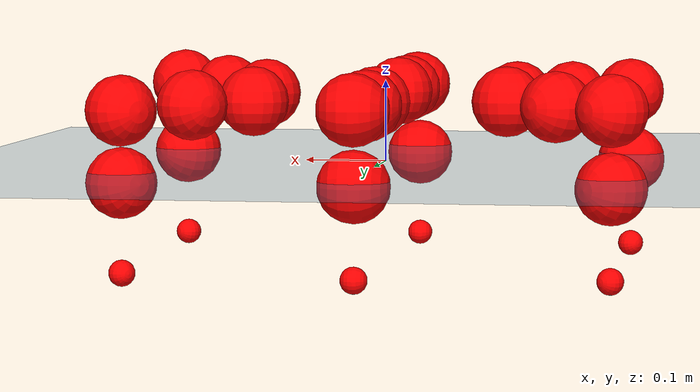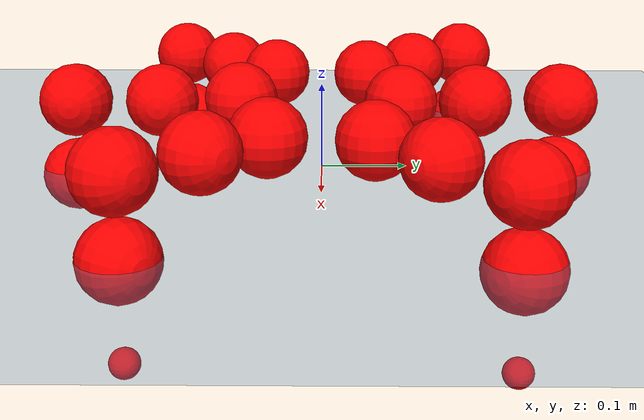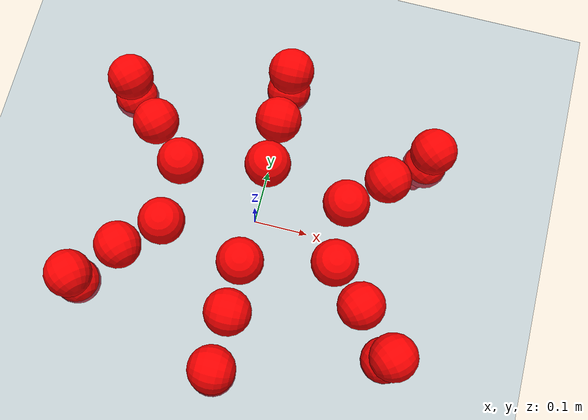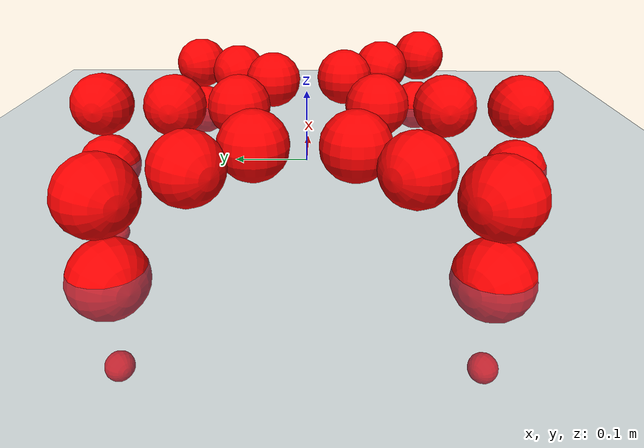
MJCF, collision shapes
<mujoco model="Golem">
  <compiler angle="radian" assetdir="assets" balanceinertia="true" inertiafromgeom="false"/>

  <option timestep="0.005" density="1.2" viscosity="2e-05"/>

  <size nkey="1"/>

  <visual>
    <quality shadowsize="8192"/>
    <map shadowclip="0.5"/>
  </visual>

  <default>
    <default class="/">
      <joint armature="0.01" damping="0.01" frictionloss="0.01"/>
      <geom contype="0" conaffinity="0" group="1" solref="-1000 -80"/>
      <site size="0.01 0.005 0.005" group="5"/>
      <general forcelimited="true" biastype="affine" gainprm="25" biasprm="0 -25 -0.5"/>
      <default class="visual">
        <geom type="mesh" group="2"/>
      </default>
      <default class="collision">
        <geom group="3"/>
      </default>
      <default class="foot">
        <geom size="0.01 0 0" condim="6" group="4" priority="1" solimp="0.015 1 0.01"/>
      </default>
      <default class="reward_collision_sphere">
        <geom group="5" rgba="1 0 0 1"/>
      </default>
    </default>
  </default>

  <asset>
    <texture type="skybox" colorspace="auto" name="//unnamed_texture_0" builtin="gradient" rgb1="0.95 0.95 0.95" rgb2="0.95 0.95 0.95" width="100" height="600"/>
    <texture type="2d" colorspace="auto" name="texplane" builtin="checker" rgb1="0.345 0.575 0.748" rgb2="0.345 0.575 0.748" markrgb="1 1 1" width="512" height="512"/>
    <material name="MatPlane" class="/" texture="texplane" texuniform="true" texrepeat="2 2" specular="0.9"/>
    <mesh name="body" class="/" file="body.stl" scale="0.001 0.001 0.001"/>
    <mesh name="coxa" class="/" file="coxa.stl" scale="0.001 0.001 0.001"/>
    <mesh name="femur" class="/" file="femur.stl" scale="0.001 0.001 0.001"/>
    <mesh name="tibia" class="/" file="tibia.stl" scale="0.001 0.001 0.001"/>
    <mesh name="tarsus" class="/" file="tarsus.stl" scale="0.001 0.001 0.001"/>
  </asset>

  <worldbody>
    <geom name="floor" class="/" size="100 100 0.125" type="plane" group="0" material="MatPlane"/>
    <light name="toplight_shadow" class="/" pos="0 0 5" dir="0.0990148 0.0990148 -0.990148" type="directional" ambient="0.04 0.04 0.04" diffuse="0.55 0.55 0.55" specular="0.12 0.12 0.12"/>
    <light name="toplight_fill" class="/" pos="0 0 5" dir="0.0990148 0.0990148 -0.990148" type="directional" castshadow="false" ambient="0.04 0.04 0.04" diffuse="0.3 0.3 0.3" specular="0.08 0.08 0.08"/>
    <body name="trunk" pos="-0.000191464 -0.00182274 -0.00138553" quat="1 2.148e-05 -1.71212e-05 3.89238e-06">
      <inertial pos="0.00298831 -0.00288954 -0.000982459" quat="0.99991 0.000633881 -0.0134253 0.000432767" mass="4.47882" diaginertia="0.00976084 0.00706707 0.0326198"/>
      <joint name="//unnamed_joint_0" type="free"/>
      <geom name="//unnamed_geom_1" class="/" pos="0 0 0.0810933" quat="1 0 0 0" type="mesh" rgba="0.9 0.9 0.9 1" mesh="body"/>
      <site name="imu" class="/" pos="0.117988 -0.00112826 0.113782" size="0.0107229"/>
      <camera name="track" class="/" pos="0 -1.88778 0" quat="0.707107 0.707107 0 0" mode="trackcom"/>
      <camera name="ego_camera" class="/" pos="0.130768 0 0.126708" quat="-0.5 -0.5 0.5 0.5"/>
      <body name="coxa_RR" pos="-0.179413 -0.0791904 0.0805452" quat="0.381975 0.00122374 0.00018162 -0.924172">
        <inertial pos="0.000515755 0.00265956 -0.00177806" quat="0.99992 0.0116929 0.00119258 0.00462443" mass="0.236795" diaginertia="0.00963821 0.00715183 0.0302916"/>
        <joint name="coxa_joint_RR" class="/" pos="0 0 0" axis="-0.00619333 0.00632166 -0.999961" stiffness="0.00924127" range="-3.08779 3.08515" armature="0.011766" damping="0" frictionloss="0.0121526"/>
        <geom name="//unnamed_geom_2" class="/" type="mesh" rgba="0.2 0.2 0.2 1" mesh="coxa"/>
        <geom name="//unnamed_geom_3" class="reward_collision_sphere" size="0.0428917" pos="-0.0301773 0 0"/>
        <body name="femur_RR" pos="0.0583466 -0.00195031 -0.00217056" quat="0.50028 -0.499731 0.500559 0.499429">
          <inertial pos="-0.000355083 -0.00231335 0.00205255" quat="0.999972 0.00220861 -0.000360199 0.00718527" mass="0.249792" diaginertia="0.0106276 0.00733639 0.0327884"/>
          <joint name="femur_joint_RR" class="/" pos="0 0 0" axis="-0.000191495 -0.00539475 -0.999985" range="-3.08608 3.08532" armature="0.0105511" damping="0.0206965" frictionloss="0.0107022"/>
          <geom name="//unnamed_geom_4" class="/" type="mesh" rgba="0.9 0.9 0.9 1" mesh="femur"/>
          <geom name="//unnamed_geom_5" class="reward_collision_sphere" size="0.0428917"/>
          <body name="tibia_RR" pos="-0.000851535 -0.0998969 0.00171977" quat="-9.7945e-05 1 -7.07622e-05 -2.28676e-05">
            <inertial pos="0.00107469 -0.00157994 0.00194048" quat="1 -0.000204419 0.000247734 -0.000530349" mass="0.245885" diaginertia="0.010224 0.00749768 0.0321266"/>
            <joint name="tibia_joint_RR" class="/" pos="0 0 0" axis="-0.00550433 0.00137287 0.999984" stiffness="0.0044903" range="-3.17168 3.18139" armature="0.00959005" damping="0.0200055" frictionloss="0.00904265"/>
            <geom name="//unnamed_geom_6" class="/" type="mesh" rgba="0.2 0.2 0.2 1" mesh="tibia"/>
            <geom name="//unnamed_geom_7" class="reward_collision_sphere" size="0.0428917"/>
            <body name="tarsus_RR" pos="0.0879536 0.000389198 0.00205607" quat="0.999999 -0.000402634 0.000563595 0.000772189">
              <inertial pos="0.0631686 -0.0015967 0.000987167" quat="0.492386 0.507318 0.497018 0.503147" mass="0.24839" diaginertia="0.0106547 0.00732522 0.0317434"/>
              <joint name="tarsus_joint_RR" class="/" pos="0 0 0" axis="-0.00688008 0.00219162 0.999974" range="-3.17929 3.12766" armature="0.00931686" damping="0.00824095" frictionloss="0.0114317"/>
              <geom name="//unnamed_geom_8" class="/" type="mesh" rgba="0.9 0.9 0.9 1" mesh="tarsus"/>
              <geom name="foot_1" class="foot" size="0.0108687" pos="0.112662 0 0" quat="0 -0.707107 0 0.707107"/>
              <geom name="//unnamed_geom_10" class="reward_collision_sphere" size="0.0428917"/>
              <geom name="//unnamed_geom_11" class="reward_collision_sphere" size="0.0160844" pos="0.108135 0 0"/>
              <site name="foot_1" class="foot" pos="0.112662 0 0" quat="0 -0.707107 0 0.707107" size="0.0107229"/>
            </body>
          </body>
        </body>
      </body>
      <body name="coxa_RM" pos="-0.00285664 -0.123652 0.0830245" quat="0.707416 0.000727455 0.000731046 -0.706797">
        <inertial pos="0.000715824 0.000294893 0.000379751" quat="0.999919 -0.00874292 0.00722661 -0.00574994" mass="0.231614" diaginertia="0.00995388 0.00708536 0.0317453"/>
        <joint name="coxa_joint_RM" class="/" pos="0 0 0" axis="-0.000387485 0.0110943 -0.999938" range="-3.14373 3.09621" armature="0.00934368" damping="0.0268787" frictionloss="0.0114217"/>
        <geom name="//unnamed_geom_12" class="/" type="mesh" rgba="0.2 0.2 0.2 1" mesh="coxa"/>
        <geom name="//unnamed_geom_13" class="reward_collision_sphere" size="0.0428917" pos="-0.0301773 0 0"/>
        <body name="femur_RM" pos="0.0624736 0.00195038 -0.00123514" quat="0.499671 -0.500066 0.499836 0.500427">
          <inertial pos="-0.000571448 0.000803838 -0.00106379" quat="0.99996 -0.00690596 -0.00116394 -0.00560084" mass="0.251737" diaginertia="0.0103064 0.00752032 0.0315728"/>
          <joint name="femur_joint_RM" class="/" pos="0 0 0" axis="8.18479e-05 -0.00244338 -0.999997" stiffness="0.00587199" range="-3.13959 3.18429" armature="0.0111785" damping="0.0173551" frictionloss="0.0102369"/>
          <geom name="//unnamed_geom_14" class="/" type="mesh" rgba="0.9 0.9 0.9 1" mesh="femur"/>
          <geom name="//unnamed_geom_15" class="reward_collision_sphere" size="0.0428917"/>
          <body name="tibia_RM" pos="-0.000265088 -0.101886 -0.0010752" quat="-0.000281477 1 -0.00052763 -0.000102473">
            <inertial pos="0.000347553 0.000213669 0.00042091" quat="0.999942 0.00494945 -0.00511347 -0.0080375" mass="0.242284" diaginertia="0.0103879 0.00756907 0.0317857"/>
            <joint name="tibia_joint_RM" class="/" pos="0 0 0" axis="0.00696681 0.00319638 0.999971" range="-3.08855 3.16102" armature="0.0116631" damping="0.0185649" frictionloss="0.00992913"/>
            <geom name="//unnamed_geom_16" class="/" type="mesh" rgba="0.2 0.2 0.2 1" mesh="tibia"/>
            <geom name="//unnamed_geom_17" class="reward_collision_sphere" size="0.0428917"/>
            <body name="tarsus_RM" pos="0.0918338 0.0023373 0.00266749" quat="1 0.00031249 -0.00027906 -0.00022161">
              <inertial pos="0.0596045 -0.0021164 -0.000515323" quat="0.5012 0.496706 0.499567 0.502508" mass="0.243699" diaginertia="0.0101192 0.00734417 0.0321253"/>
              <joint name="tarsus_joint_RM" class="/" pos="0 0 0" axis="0.00933451 0.00879026 0.999918" range="-3.08608 3.09426" armature="0.00943587" damping="0" frictionloss="0.0120098"/>
              <geom name="//unnamed_geom_18" class="/" type="mesh" rgba="0.9 0.9 0.9 1" mesh="tarsus"/>
              <geom name="foot_2" class="foot" size="0.0100728" pos="0.112662 0 0" quat="0 -0.707107 0 0.707107"/>
              <geom name="//unnamed_geom_20" class="reward_collision_sphere" size="0.0428917"/>
              <geom name="//unnamed_geom_21" class="reward_collision_sphere" size="0.0160844" pos="0.108135 0 0"/>
              <site name="foot_2" class="foot" pos="0.112662 0 0" quat="0 -0.707107 0 0.707107" size="0.0107229"/>
            </body>
          </body>
        </body>
      </body>
      <body name="coxa_RF" pos="0.181883 -0.0755052 0.0816343" quat="0.924074 7.21822e-05 0.000204447 -0.382212">
        <inertial pos="0.00173133 0.000540005 -0.000379353" quat="0.99997 -0.00444501 -0.00603158 -0.00203936" mass="0.242962" diaginertia="0.00994138 0.00729205 0.030644"/>
        <joint name="coxa_joint_RF" class="/" pos="0 0 0" axis="-0.0101438 -0.00879253 -0.99991" stiffness="0.00391009" range="-3.13015 3.10901" armature="0.00979404" damping="0" frictionloss="0.0101626"/>
        <geom name="//unnamed_geom_22" class="/" type="mesh" rgba="0.2 0.2 0.2 1" mesh="coxa"/>
        <geom name="//unnamed_geom_23" class="reward_collision_sphere" size="0.0428917" pos="-0.0301773 0 0"/>
        <body name="femur_RF" pos="0.0581889 -0.000763424 0.00183184" quat="0.499998 -0.499993 0.500016 0.499993">
          <inertial pos="0.00163083 -0.000963104 -0.00239942" quat="0.999948 0.00119033 0.00923164 0.00415521" mass="0.243743" diaginertia="0.00998962 0.00723838 0.0320624"/>
          <joint name="femur_joint_RF" class="/" pos="0 0 0" axis="3.42715e-06 -0.0141031 -0.999901" range="-3.0913 3.13532" armature="0.010875" damping="0.0104583" frictionloss="0.0113631"/>
          <geom name="//unnamed_geom_24" class="/" type="mesh" rgba="0.9 0.9 0.9 1" mesh="femur"/>
          <geom name="//unnamed_geom_25" class="reward_collision_sphere" size="0.0428917"/>
          <body name="tibia_RF" pos="-0.00360953 -0.10334 -0.000355196" quat="-0.00102807 0.999999 0.000132561 0.000818977">
            <inertial pos="0.000590276 0.00125815 -0.000137251" quat="0.99999 -0.0031982 0.00161683 -0.00282999" mass="0.263881" diaginertia="0.0103278 0.00755534 0.0329411"/>
            <joint name="tibia_joint_RF" class="/" pos="0 0 0" axis="0.00474128 0.00281053 0.999985" stiffness="0.0255879" range="-3.18532 3.13321" armature="0.0105402" damping="0.0377725" frictionloss="0.00979229"/>
            <geom name="//unnamed_geom_26" class="/" type="mesh" rgba="0.2 0.2 0.2 1" mesh="tibia"/>
            <geom name="//unnamed_geom_27" class="reward_collision_sphere" size="0.0428917"/>
            <body name="tarsus_RF" pos="0.0899832 -0.00288159 0.00222469" quat="1 1.89154e-05 -4.61914e-06 -1.28655e-05">
              <inertial pos="0.0635474 0.00196954 -0.00102347" quat="0.49955 0.510903 0.493196 0.496171" mass="0.239225" diaginertia="0.00969076 0.00728772 0.0323434"/>
              <joint name="tarsus_joint_RF" class="/" pos="0 0 0" axis="-7.9917e-05 -0.0126616 0.99992" stiffness="0.00859793" range="-3.17115 3.09225" armature="0.0094465" damping="0.00889521" frictionloss="0.0117535"/>
              <geom name="//unnamed_geom_28" class="/" type="mesh" rgba="0.9 0.9 0.9 1" mesh="tarsus"/>
              <geom name="foot_3" class="foot" size="0.0115997" pos="0.112662 0 0" quat="0 -0.707107 0 0.707107"/>
              <geom name="//unnamed_geom_30" class="reward_collision_sphere" size="0.0428917"/>
              <geom name="//unnamed_geom_31" class="reward_collision_sphere" size="0.0160844" pos="0.108135 0 0"/>
              <site name="foot_3" class="foot" pos="0.112662 0 0" quat="0 -0.707107 0 0.707107" size="0.0107229"/>
            </body>
          </body>
        </body>
      </body>
      <body name="coxa_LR" pos="-0.177823 0.0811798 0.079969" quat="0.38285 -8.53869e-05 -0.000107327 0.92381">
        <inertial pos="-0.0021357 -0.000147004 0.00056319" quat="0.99994 0.00134141 -0.00585942 0.00917114" mass="0.252903" diaginertia="0.0102101 0.0075701 0.033502"/>
        <joint name="coxa_joint_LR" class="/" pos="0 0 0" axis="0.00274923 -0.00172758 -0.999995" stiffness="0.00514941" range="-3.18822 3.11608" armature="0.0111066" damping="0.0109319" frictionloss="0.0111745"/>
        <geom name="//unnamed_geom_32" class="/" type="mesh" rgba="0.2 0.2 0.2 1" mesh="coxa"/>
        <geom name="//unnamed_geom_33" class="reward_collision_sphere" size="0.0428917" pos="-0.0301773 0 0"/>
        <body name="femur_LR" pos="0.0610011 0.0010086 -0.00201464" quat="0.499897 -0.500184 0.500828 0.49909">
          <inertial pos="0.000893113 0.000816037 0.00257766" quat="0.999958 0.00527955 0.00498202 0.00553834" mass="0.23181" diaginertia="0.0100494 0.00701925 0.0311212"/>
          <joint name="femur_joint_LR" class="/" pos="0 0 0" axis="-0.00811101 0.0153317 0.99985" stiffness="0.000969928" range="-3.18645 3.19169" armature="0.00920066" damping="0.0149115" frictionloss="0.0102849"/>
          <geom name="//unnamed_geom_34" class="/" type="mesh" rgba="0.9 0.9 0.9 1" mesh="femur"/>
          <geom name="//unnamed_geom_35" class="reward_collision_sphere" size="0.0428917"/>
          <body name="tibia_LR" pos="-0.000911587 -0.10165 -0.00101664" quat="-0.000424049 0.999999 0.00114295 -0.000636141">
            <inertial pos="-0.00207519 0.00279098 0.000350542" quat="0.999987 0.00336179 -0.00315403 0.00237927" mass="0.250886" diaginertia="0.0108916 0.00794909 0.0325503"/>
            <joint name="tibia_joint_LR" class="/" pos="0 0 0" axis="-0.00170915 -9.24285e-05 -0.999999" range="-3.17687 3.15413" armature="0.0106259" damping="0.0017518" frictionloss="0.010603"/>
            <geom name="//unnamed_geom_36" class="/" type="mesh" rgba="0.2 0.2 0.2 1" mesh="tibia"/>
            <geom name="//unnamed_geom_37" class="reward_collision_sphere" size="0.0428917"/>
            <body name="tarsus_LR" pos="0.0916286 -0.00128687 -0.00130127" quat="1 2.17291e-05 -5.68683e-05 0.00011102">
              <inertial pos="0.0605837 0.000711912 0.00219511" quat="0.499118 0.500288 0.499837 0.500756" mass="0.242077" diaginertia="0.00995185 0.00696233 0.0323779"/>
              <joint name="tarsus_joint_LR" class="/" pos="0 0 0" axis="-0.00510271 0.00495727 -0.999975" stiffness="0.00845005" range="-3.18681 3.17239" armature="0.0108672" damping="0.0100064" frictionloss="0.00978786"/>
              <geom name="//unnamed_geom_38" class="/" type="mesh" rgba="0.9 0.9 0.9 1" mesh="tarsus"/>
              <geom name="foot_4" class="foot" size="0.0114674" pos="0.112662 0 0" quat="0.707107 0 -0.707107 0"/>
              <geom name="//unnamed_geom_40" class="reward_collision_sphere" size="0.0428917"/>
              <geom name="//unnamed_geom_41" class="reward_collision_sphere" size="0.0160844" pos="0.108135 0 0"/>
              <site name="foot_4" class="foot" pos="0.112662 0 0" quat="0.707107 0 -0.707107 0" size="0.0107229"/>
            </body>
          </body>
        </body>
      </body>
      <body name="coxa_LM" pos="3.8166e-05 0.124643 0.0805913" quat="0.706715 -0.000723491 -0.00108592 0.707497">
        <inertial pos="-0.000210787 -0.000404627 0.00158825" quat="0.999949 0.000805094 -0.00844347 -0.00556768" mass="0.246341" diaginertia="0.0109556 0.00782516 0.033815"/>
        <joint name="coxa_joint_LM" class="/" pos="0 0 0" axis="-0.00864191 0.00472831 -0.999951" stiffness="0.00217238" range="-3.18042 3.14895" armature="0.012263" damping="0.0142026" frictionloss="0.0107363"/>
        <geom name="//unnamed_geom_42" class="/" type="mesh" rgba="0.2 0.2 0.2 1" mesh="coxa"/>
        <geom name="//unnamed_geom_43" class="reward_collision_sphere" size="0.0428917" pos="-0.0301773 0 0"/>
        <body name="femur_LM" pos="0.057506 0.00183465 0.000542879" quat="0.499934 -0.500003 0.499894 0.500169">
          <inertial pos="-0.000684921 3.34923e-05 0.00282329" quat="0.999996 0.00255651 0.00156138 2.52309e-05" mass="0.244937" diaginertia="0.00999537 0.00738824 0.0314613"/>
          <joint name="femur_joint_LM" class="/" pos="0 0 0" axis="-0.00822418 0.00235195 0.999963" stiffness="0.00960666" range="-3.08996 3.18895" armature="0.00990752" damping="0.0186483" frictionloss="0.0108566"/>
          <geom name="//unnamed_geom_44" class="/" type="mesh" rgba="0.9 0.9 0.9 1" mesh="femur"/>
          <geom name="//unnamed_geom_45" class="reward_collision_sphere" size="0.0428917"/>
          <body name="tibia_LM" pos="-0.00129492 -0.100087 -0.000145995" quat="-0.00112307 0.999999 -0.000211131 0.000502067">
            <inertial pos="0.00256064 -0.000849519 0.000440329" quat="0.999956 0.000625071 -0.00710629 0.00612296" mass="0.262598" diaginertia="0.0107161 0.00784963 0.0341569"/>
            <joint name="tibia_joint_LM" class="/" pos="0 0 0" axis="-0.000733163 0.000519484 -1" stiffness="0.00977659" range="-3.14032 3.09532" armature="0.00879068" damping="0.0247551" frictionloss="0.0107558"/>
            <geom name="//unnamed_geom_46" class="/" type="mesh" rgba="0.2 0.2 0.2 1" mesh="tibia"/>
            <geom name="//unnamed_geom_47" class="reward_collision_sphere" size="0.0428917"/>
            <body name="tarsus_LM" pos="0.0883445 -0.00156871 -0.000876774" quat="1 -5.49212e-05 0.000180502 0.00033157">
              <inertial pos="0.0577978 3.04175e-05 -0.000987065" quat="0.500515 0.507259 0.491927 0.500181" mass="0.258831" diaginertia="0.0103547 0.00811241 0.0327921"/>
              <joint name="tarsus_joint_LM" class="/" pos="0 0 0" axis="0.00183857 0.00963275 -0.999952" range="-3.14663 3.13275" armature="0.00959485" damping="0" frictionloss="0.00944458"/>
              <geom name="//unnamed_geom_48" class="/" type="mesh" rgba="0.9 0.9 0.9 1" mesh="tarsus"/>
              <geom name="foot_5" class="foot" size="0.0115252" pos="0.112662 0 0" quat="0.707107 0 -0.707107 0"/>
              <geom name="//unnamed_geom_50" class="reward_collision_sphere" size="0.0428917"/>
              <geom name="//unnamed_geom_51" class="reward_collision_sphere" size="0.0160844" pos="0.108135 0 0"/>
              <site name="foot_5" class="foot" pos="0.112662 0 0" quat="0.707107 0 -0.707107 0" size="0.0107229"/>
            </body>
          </body>
        </body>
      </body>
      <body name="coxa_LF" pos="0.17734 0.0800811 0.077718" quat="0.923885 -0.00105381 -1.81252e-05 0.382669">
        <inertial pos="0.00161482 0.00302866 -0.000940219" quat="0.999912 0.00551317 -0.0111677 -0.00465463" mass="0.248599" diaginertia="0.0102993 0.00773454 0.0327522"/>
        <joint name="coxa_joint_LF" class="/" pos="0 0 0" axis="0.00617834 0.00624117 -0.999961" range="-3.17796 3.13773" armature="0.0123037" damping="0.0237127" frictionloss="0.0104393"/>
        <geom name="//unnamed_geom_52" class="/" type="mesh" rgba="0.2 0.2 0.2 1" mesh="coxa"/>
        <geom name="//unnamed_geom_53" class="reward_collision_sphere" size="0.0428917" pos="-0.0301773 0 0"/>
        <body name="femur_LF" pos="0.0593205 -0.00110161 -0.00115081" quat="0.499951 -0.500153 0.499846 0.50005">
          <inertial pos="1.3727e-05 -0.00194199 0.00259891" quat="0.999998 -0.00164107 -0.000222421 -0.000527211" mass="0.257062" diaginertia="0.0106446 0.00755941 0.032934"/>
          <joint name="femur_joint_LF" class="/" pos="0 0 0" axis="0.00533598 -0.00167248 0.999984" range="-3.18665 3.1455" armature="0.0119033" damping="0" frictionloss="0.0111631"/>
          <geom name="//unnamed_geom_54" class="/" type="mesh" rgba="0.9 0.9 0.9 1" mesh="femur"/>
          <geom name="//unnamed_geom_55" class="reward_collision_sphere" size="0.0428917"/>
          <body name="tibia_LF" pos="0.00264405 -0.102725 0.00322768" quat="-0.000675776 0.999999 -0.000444403 -0.000666421">
            <inertial pos="0.00159386 -0.000963435 -0.00213082" quat="0.999999 0.00137482 -0.000663779 -9.25317e-05" mass="0.243515" diaginertia="0.00984011 0.00730469 0.030955"/>
            <joint name="tibia_joint_LF" class="/" pos="0 0 0" axis="0.00550814 -0.000850555 -0.999984" stiffness="0.0210458" range="-3.13455 3.13397" armature="0.00930237" damping="0.021047" frictionloss="0.0121237"/>
            <geom name="//unnamed_geom_56" class="/" type="mesh" rgba="0.2 0.2 0.2 1" mesh="tibia"/>
            <geom name="//unnamed_geom_57" class="reward_collision_sphere" size="0.0428917"/>
            <body name="tarsus_LF" pos="0.0863397 8.34316e-05 -0.000523118" quat="1 0.000259011 5.16875e-05 -1.00806e-05">
              <inertial pos="0.063577 0.00312897 -0.00272298" quat="0.491128 0.495364 0.513012 0.500227" mass="0.238603" diaginertia="0.0103368 0.00748506 0.0322531"/>
              <joint name="tarsus_joint_LF" class="/" pos="0 0 0" axis="0.00167855 0.0183505 -0.99983" stiffness="0.0287886" range="-3.0941 3.12144" armature="0.01093" damping="0.0159668" frictionloss="0.00943648"/>
              <geom name="//unnamed_geom_58" class="/" type="mesh" rgba="0.9 0.9 0.9 1" mesh="tarsus"/>
              <geom name="foot_6" class="foot" size="0.0108431" pos="0.112662 0 0" quat="0.707107 0 -0.707107 0"/>
              <geom name="//unnamed_geom_60" class="reward_collision_sphere" size="0.0428917"/>
              <geom name="//unnamed_geom_61" class="reward_collision_sphere" size="0.0160844" pos="0.108135 0 0"/>
              <site name="foot_6" class="foot" pos="0.112662 0 0" quat="0.707107 0 -0.707107 0" size="0.0107229"/>
            </body>
          </body>
        </body>
      </body>
    </body>
  </worldbody>

  <contact>
    <pair class="/" geom1="floor" geom2="foot_1" name="//unnamed_contact_0"/>
    <pair class="/" geom1="floor" geom2="foot_2" name="//unnamed_contact_1"/>
    <pair class="/" geom1="floor" geom2="foot_3" name="//unnamed_contact_2"/>
    <pair class="/" geom1="floor" geom2="foot_4" name="//unnamed_contact_3"/>
    <pair class="/" geom1="floor" geom2="foot_5" name="//unnamed_contact_4"/>
    <pair class="/" geom1="floor" geom2="foot_6" name="//unnamed_contact_5"/>
  </contact>

  <actuator>
    <general name="coxa_joint_RR" class="/" joint="coxa_joint_RR" forcerange="-7.69528 7.69528" gainprm="26.2039" biasprm="0 -26.2039 -0.583078"/>
    <general name="femur_joint_RR" class="/" joint="femur_joint_RR" forcerange="-8.59196 8.59196" gainprm="26.2039" biasprm="0 -26.2039 -0.583078"/>
    <general name="tibia_joint_RR" class="/" joint="tibia_joint_RR" forcerange="-7.99117 7.99117" gainprm="26.2039" biasprm="0 -26.2039 -0.583078"/>
    <general name="tarsus_joint_RR" class="/" joint="tarsus_joint_RR" forcerange="-7.84621 7.84621" gainprm="26.2039" biasprm="0 -26.2039 -0.583078"/>
    <general name="coxa_joint_RM" class="/" joint="coxa_joint_RM" forcerange="-7.056 7.056" gainprm="26.2039" biasprm="0 -26.2039 -0.583078"/>
    <general name="femur_joint_RM" class="/" joint="femur_joint_RM" forcerange="-7.8221 7.8221" gainprm="26.2039" biasprm="0 -26.2039 -0.583078"/>
    <general name="tibia_joint_RM" class="/" joint="tibia_joint_RM" forcerange="-8.60837 8.60837" gainprm="26.2039" biasprm="0 -26.2039 -0.583078"/>
    <general name="tarsus_joint_RM" class="/" joint="tarsus_joint_RM" forcerange="-8.57569 8.57569" gainprm="26.2039" biasprm="0 -26.2039 -0.583078"/>
    <general name="coxa_joint_RF" class="/" joint="coxa_joint_RF" forcerange="-7.80276 7.80276" gainprm="26.2039" biasprm="0 -26.2039 -0.583078"/>
    <general name="femur_joint_RF" class="/" joint="femur_joint_RF" forcerange="-8.26476 8.26476" gainprm="26.2039" biasprm="0 -26.2039 -0.583078"/>
    <general name="tibia_joint_RF" class="/" joint="tibia_joint_RF" forcerange="-8.61955 8.61955" gainprm="26.2039" biasprm="0 -26.2039 -0.583078"/>
    <general name="tarsus_joint_RF" class="/" joint="tarsus_joint_RF" forcerange="-8.3541 8.3541" gainprm="26.2039" biasprm="0 -26.2039 -0.583078"/>
    <general name="coxa_joint_LR" class="/" joint="coxa_joint_LR" forcerange="-7.58688 7.58688" gainprm="26.2039" biasprm="0 -26.2039 -0.583078"/>
    <general name="femur_joint_LR" class="/" joint="femur_joint_LR" forcerange="-7.7252 7.7252" gainprm="26.2039" biasprm="0 -26.2039 -0.583078"/>
    <general name="tibia_joint_LR" class="/" joint="tibia_joint_LR" forcerange="-7.59555 7.59555" gainprm="26.2039" biasprm="0 -26.2039 -0.583078"/>
    <general name="tarsus_joint_LR" class="/" joint="tarsus_joint_LR" forcerange="-7.74846 7.74846" gainprm="26.2039" biasprm="0 -26.2039 -0.583078"/>
    <general name="coxa_joint_LM" class="/" joint="coxa_joint_LM" forcerange="-7.1576 7.1576" gainprm="26.2039" biasprm="0 -26.2039 -0.583078"/>
    <general name="femur_joint_LM" class="/" joint="femur_joint_LM" forcerange="-7.21925 7.21925" gainprm="26.2039" biasprm="0 -26.2039 -0.583078"/>
    <general name="tibia_joint_LM" class="/" joint="tibia_joint_LM" forcerange="-7.78196 7.78196" gainprm="26.2039" biasprm="0 -26.2039 -0.583078"/>
    <general name="tarsus_joint_LM" class="/" joint="tarsus_joint_LM" forcerange="-8.58931 8.58931" gainprm="26.2039" biasprm="0 -26.2039 -0.583078"/>
    <general name="coxa_joint_LF" class="/" joint="coxa_joint_LF" forcerange="-7.20187 7.20187" gainprm="26.2039" biasprm="0 -26.2039 -0.583078"/>
    <general name="femur_joint_LF" class="/" joint="femur_joint_LF" forcerange="-7.94168 7.94168" gainprm="26.2039" biasprm="0 -26.2039 -0.583078"/>
    <general name="tibia_joint_LF" class="/" joint="tibia_joint_LF" forcerange="-7.62559 7.62559" gainprm="26.2039" biasprm="0 -26.2039 -0.583078"/>
    <general name="tarsus_joint_LF" class="/" joint="tarsus_joint_LF" forcerange="-7.79434 7.79434" gainprm="26.2039" biasprm="0 -26.2039 -0.583078"/>
  </actuator>

  <sensor>
    <gyro site="imu" name="imu_angular_velocity"/>
    <velocimeter site="imu" name="imu_linear_velocity"/>
    <framelinvel objtype="site" objname="foot_1" name="foot_1_global_linear_velocity"/>
    <framelinvel objtype="site" objname="foot_2" name="foot_2_global_linear_velocity"/>
    <framelinvel objtype="site" objname="foot_3" name="foot_3_global_linear_velocity"/>
    <framelinvel objtype="site" objname="foot_4" name="foot_4_global_linear_velocity"/>
    <framelinvel objtype="site" objname="foot_5" name="foot_5_global_linear_velocity"/>
    <framelinvel objtype="site" objname="foot_6" name="foot_6_global_linear_velocity"/>
  </sensor>

  <keyframe>
    <key name="home" qpos="0 0 0.1457 1 0 0 0 0 0 0 0 0 0 0 0 0 0 0 0 0 0 0 0 0 0 0 0 0 0 0 0"/>
  </keyframe>
</mujoco>
